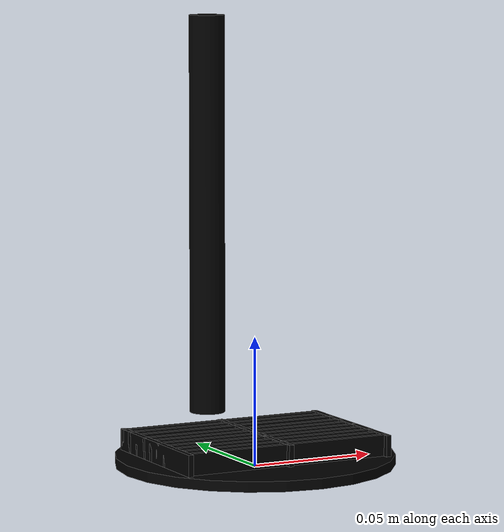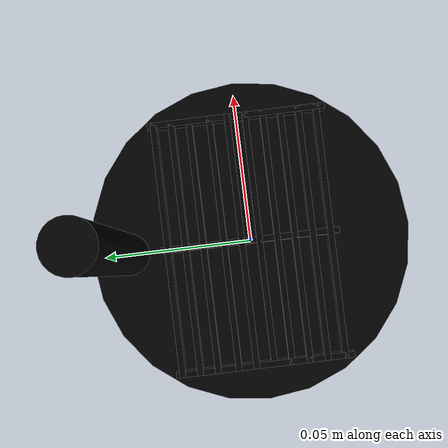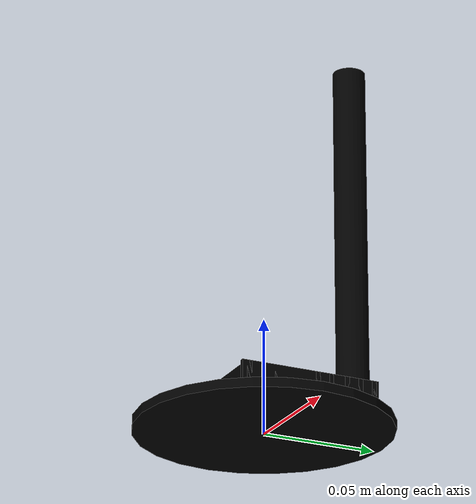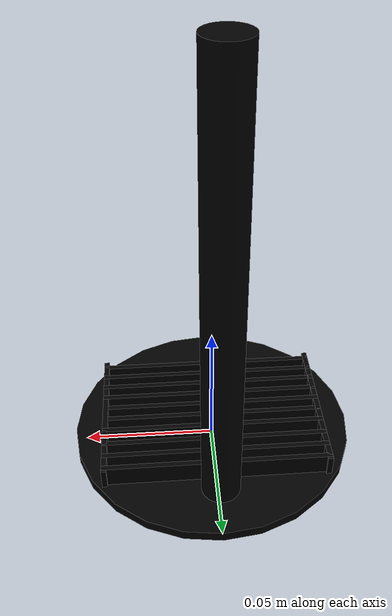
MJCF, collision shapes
<mujoco model="glassSheet">
  <!-- XML 在 model/object，下两级回到 assets -->
  <compiler angle="radian" meshdir="../../assets"/>

  <asset>
    <!-- 主 mesh -->
    <mesh
      name="glass_sheet_mesh"
      file="glassSheet/base.obj"
      scale="0.1 0.1 0.1"/>
    <texture
      name="glass_diffuse"
      type="2d"
      file="../../assets/glassSheet/texture_diffuse.png"/>

    <!-- 玻璃近似材质（MuJoCo 不是真 PBR） -->
    <material
      name="glass_material"
      texture="glass_diffuse"
      rgba="1 0 0 1"/>
  </asset>

  <worldbody>
    <body name="glass_sheet"   euler="1.5708 0 0">

      <!-- 视觉几何 -->
      <geom
        name="glass_sheet_visual"
        type="mesh"
        mesh="glass_sheet_mesh"
        material="glass_material"
        contype="0"
        rgba="0.9 0.9 0.9 1"
        conaffinity="0"/>

      <!-- 碰撞几何（可抓取 / 可放置） -->
      <geom
        name="glass_sheet_collision_1"
        type="cylinder"
        size="0.007 0.0785"
        pos="0 0.093 -0.041"
        euler="1.5708 0 0"
        contype="1"
        conaffinity="1"
        friction="0.6 0.2 0.001"
        rgba="0 0 0 0"/>
      <geom
        name="glass_sheet_collision_2"
        type="cylinder"
        size="0.054 0.002"
        pos="0 0.003 0"
        euler="1.5708 0 0"
        contype="1"
        conaffinity="1"
        friction="0.6 0.2 0.001"
        rgba="0 0 0 0"/>

      <geom name="ring_1"
        type="box"
        size="0.043 0.0042 0.001"
        pos="0 0.0091 0.003"
        contype="1"
        conaffinity="1"
        rgba="0 0 0 0"/>
      <geom name="ring_2"
        type="box"
        size="0.043 0.0042 0.001"
        pos="0 0.0091 0.009"
        contype="1"
        conaffinity="1"
        rgba="0 0 0 0"/>
      <geom name="ring_3"
        type="box"
        size="0.043 0.0042 0.001"
        pos="0 0.0091 0.015"
        contype="1"
        conaffinity="1"
        rgba="0 0 0 0"/>
      <geom name="ring_4"
        type="box"
        size="0.043 0.0042 0.001"
        pos="0 0.0091 0.021"
        contype="1"
        conaffinity="1"
        rgba="0 0 0 0"/>
      <geom name="ring_5"
        type="box"
        size="0.043 0.0042 0.001"
        pos="0 0.0091 0.027"
        contype="1"
        conaffinity="1"
         rgba="0 0 0 0"/>
      <geom name="ring_6"
        type="box"
        size="0.043 0.0042 0.001"
        pos="0 0.0091 -0.028"
        contype="1"
        conaffinity="1"
        rgba="0 0 0 0"/>
      <geom name="ring_7"
              type="box"
              size="0.043 0.0042 0.001"
              pos="0 0.0091 -0.009"
              contype="1"
              conaffinity="1"
              rgba="0 0 0 0"/>
      <geom name="ring_8"
        type="box"
        size="0.043 0.0042 0.001"
        pos="0 0.0091 -0.003"
        contype="1"
        conaffinity="1"
       rgba="0 0 0 0"/>
      <geom name="ring_9"
        type="box"
        size="0.043 0.0042 0.001"
        pos="0 0.0091 -0.016"
        contype="1"
        conaffinity="1"
        rgba="0 0 0 0"/>
      <geom name="ring_10"
        type="box"
        size="0.043 0.0042 0.001"
        pos="0 0.0091 -0.022"
        contype="1"
        conaffinity="1"
        rgba="0 0 0 0"/>
      <geom name="ring_11"
        type="box"
        size="0.001 0.0042 0.03"
        pos="0 0.0091 0"
        contype="1"
        conaffinity="1"
        rgba="0 0 0 0"/>
      <geom name="ring_12"
        type="box"
        size="0.001 0.0042 0.03"
        pos="0.042 0.0091 0"
        contype="1"
        conaffinity="1"
        rgba="0 0 0 0"/>
      <geom name="ring_13"
        type="box"
        size="0.001 0.0042 0.03"
        pos="-0.042 0.0091 0"
        contype="1"
        conaffinity="1"
        rgba="0 0 0 0"/>

    </body>
  </worldbody>
</mujoco>
